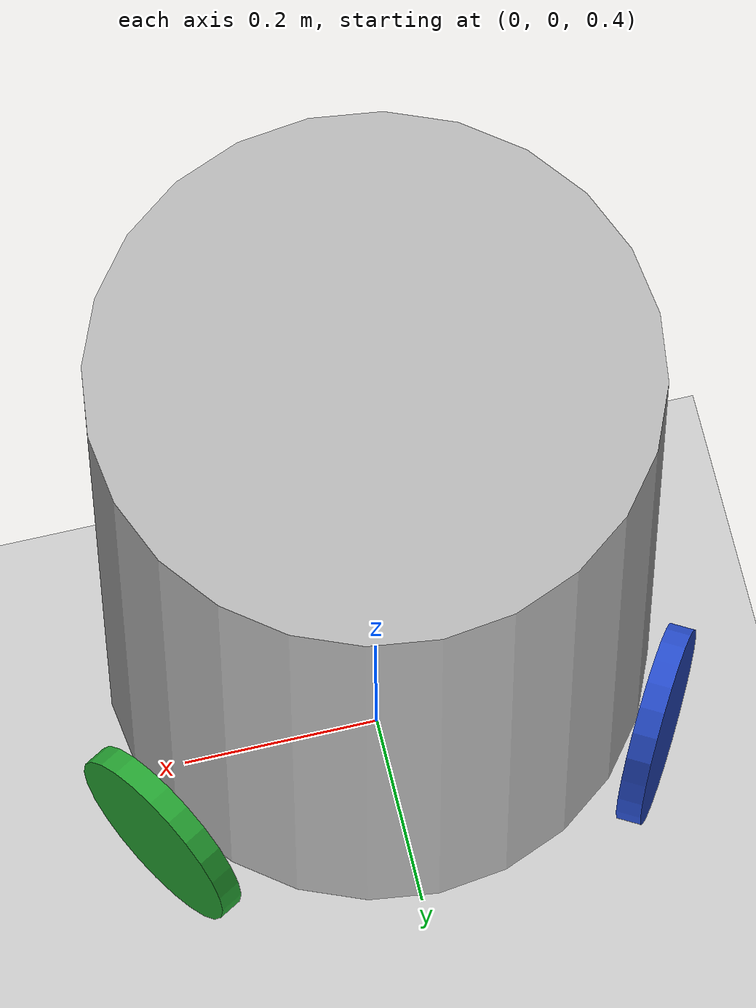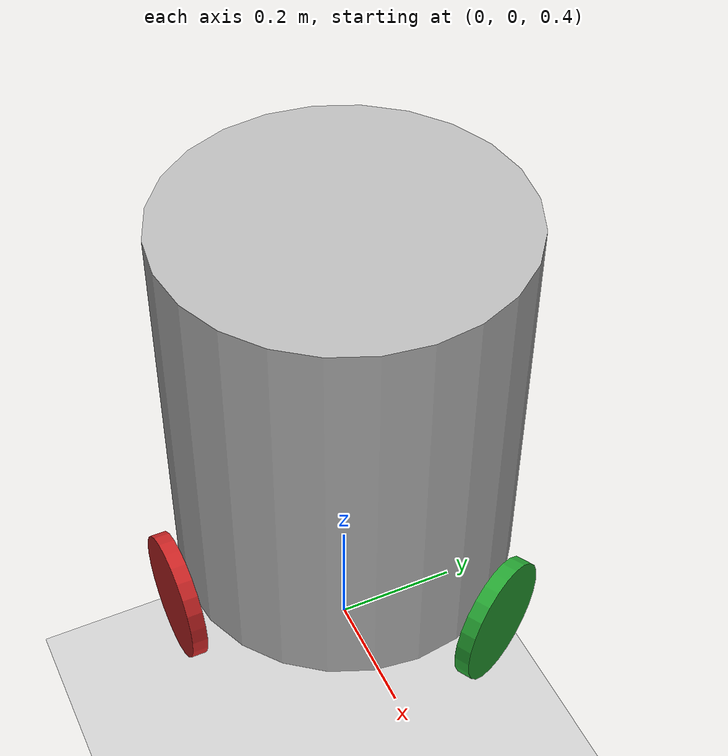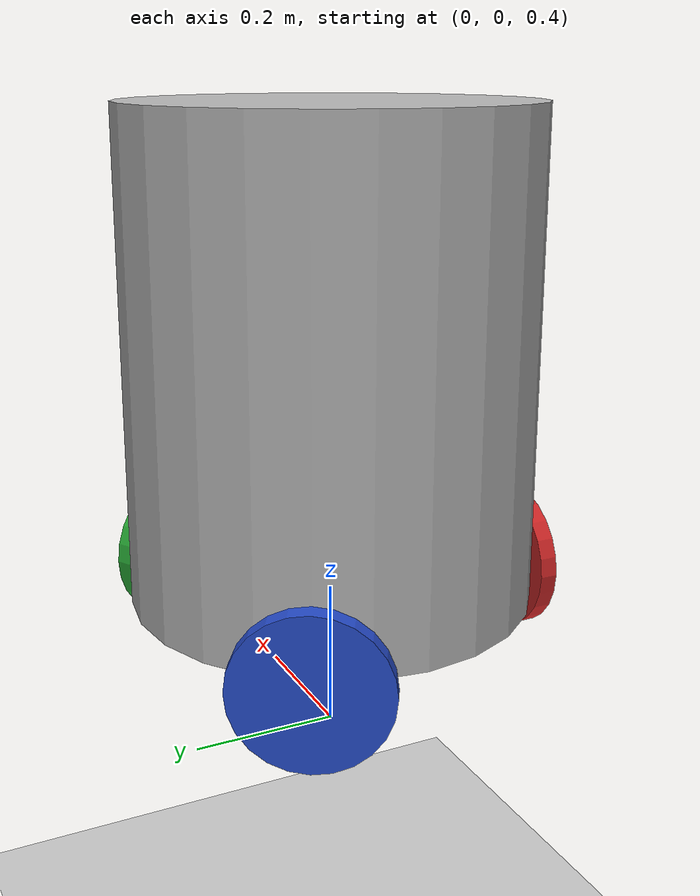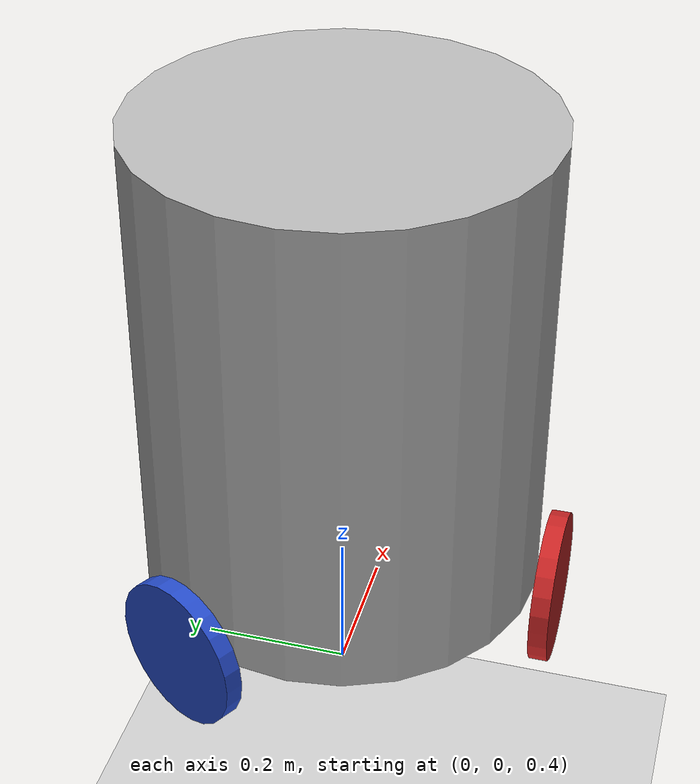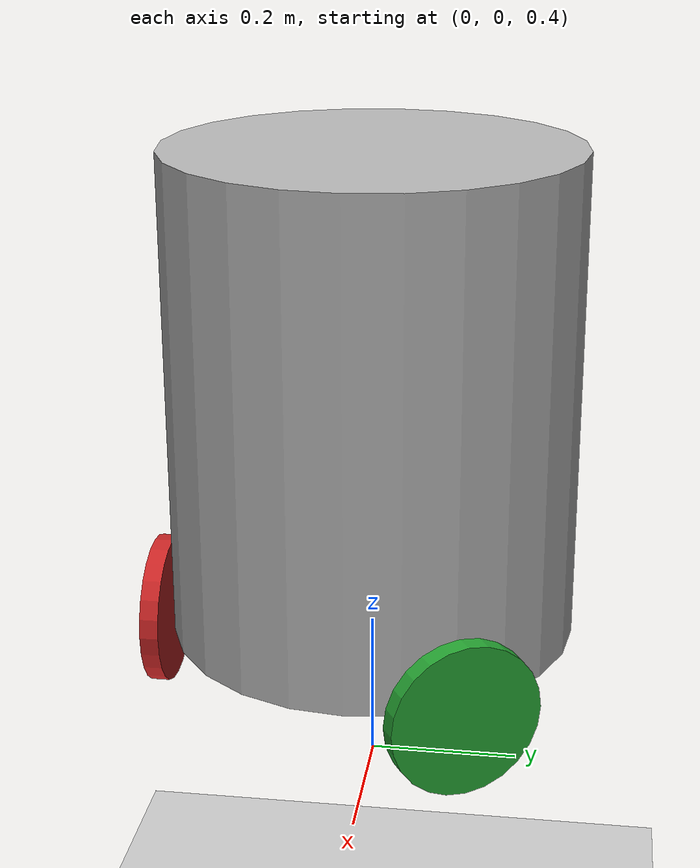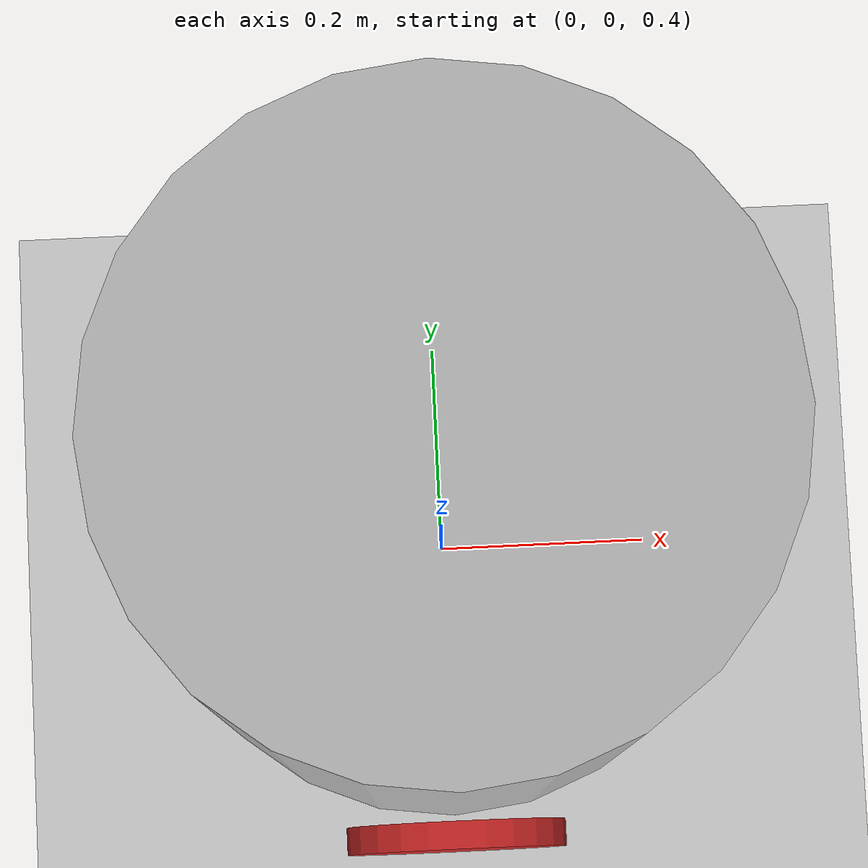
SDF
<?xml version="1.0" ?>
<sdf version="1.4">
  <world name="default">
    <physics type="ode">
      <gravity>0.000000 0.000000 -9.810000</gravity>
      <ode>
        <solver>
          <type>quick</type>
          <iters>250</iters>
          <precon_iters>0</precon_iters>
          <sor>1.400000</sor>
        </solver>
        <constraints>
          <cfm>0.000000</cfm>
          <erp>0.200000</erp>
          <contact_max_correcting_vel>0.000000</contact_max_correcting_vel>
          <contact_surface_layer>0.00000</contact_surface_layer>
        </constraints>
      </ode>
      <bullet>
        <solver>
          <type>sequential_impulse</type>
          <iters>250</iters>
          <sor>1.400000</sor>
        </solver>
        <constraints>
          <cfm>0.000000</cfm>
          <erp>0.200000</erp>
          <split_impulse>true</split_impulse>
          <split_impulse_penetration_threshold>-0.01</split_impulse_penetration_threshold>
          <contact_surface_layer>0.01000</contact_surface_layer>
        </constraints>
      </bullet>
      <simbody>
        <accuracy>0.001</accuracy>
        <max_transient_velocity>0.01</max_transient_velocity>
        <contact>
          <stiffness>1e8</stiffness>
          <dissipation>10</dissipation>
          <static_friction>0.15</static_friction>
          <dynamic_friction>0.1</dynamic_friction>
          <viscous_friction>0.0</viscous_friction>
        </contact>
      </simbody>
      <real_time_update_rate>0.000000</real_time_update_rate>
      <max_step_size>0.001000</max_step_size>
    </physics>

    <include>
      <uri>model://ground_plane</uri>
    </include>
    <include>
      <uri>model://sun</uri>
    </include>

    <model name='trikey'>
      <pose>0 0 0.5 0 -0 0</pose>
      <link name='trikey_base'>
        <pose>0 0 0 0 -0 0</pose>
        <inertial>
          <pose>-0.003048 0.00254 0.41415 0 -0 0</pose>
          <mass>32.7</mass>
          <inertia>
            <ixx>1.747</ixx>
            <ixy>0</ixy>
            <ixz>0</ixz>
            <iyy>1.747</iyy>
            <iyz>0</iyz>
            <izz>1.192</izz>
          </inertia>
        </inertial>
        <visual name='trikey_base_visual'>
          <pose>0 0 0.426 0 -0 0</pose>
          <geometry>
            <cylinder>
              <length>0.65</length>
              <radius>0.27</radius>
            </cylinder>
          </geometry>
        </visual>
        <collision name='trikey_base_collision'>
          <pose>0 0 0.426 0 -0 0</pose>
          <geometry>
            <cylinder>
              <length>0.65</length>
              <radius>0.27</radius>
            </cylinder>
          </geometry>
        </collision>
        <velocity_decay>
          <linear>0</linear>
          <angular>0</angular>
        </velocity_decay>
      </link>
      <joint name='world_to_base' type='revolute'>
        <child>trikey_base</child>
        <parent>world</parent>
        <axis>
          <limit>
            <lower>0</lower>
            <upper>0</upper>
          </limit>
          <dynamics>
            <damping>0</damping>
          </dynamics>
          <xyz>0 0 1</xyz>
        </axis>
      </joint>
      <link name='ow_transform_0_l'>
        <pose>0 -0.24 0.1 0 -0 0</pose>
        <inertial>
          <pose>0 0 0 0 0 0</pose>
          <mass>0.66725</mass>
          <inertia>
            <ixx>0.00160418</ixx>
            <ixy>-3.598e-06</ixy>
            <ixz>1.6199e-05</ixz>
            <iyy>0.00279814</iyy>
            <iyz>-4.1656e-05</iyz>
            <izz>0.00160339</izz>
          </inertia>
        </inertial>
        <collision name='ow_transform_0_l_collision_omni_wheel_0'>
          <pose>0 -0.05 2.44839e-13 1.5708 -0 0</pose>
          <geometry>
            <cylinder>
              <length>0.025</length>
              <radius>0.101</radius>
            </cylinder>
          </geometry>
          <surface>
            <contact>
              <ode/>
            </contact>
            <friction>
              <ode/>
            </friction>
          </surface>
        </collision>
        <visual name='ow_transform_0_l_visual_omni_wheel_0'>
          <pose>0 -0.05 2.44839e-13 1.5708 -0 0</pose>
          <geometry>
            <cylinder>
              <length>0.025</length>
              <radius>0.101</radius>
            </cylinder>
          </geometry>
          <material>
            <script>
              <name>Gazebo/Red</name>
              <uri>__default__</uri>
            </script>
          </material>
        </visual>
        <gravity>1</gravity>
        <velocity_decay>
          <linear>0</linear>
          <angular>0</angular>
        </velocity_decay>
        <self_collide>0</self_collide>
      </link>
      <joint name='wheel1_joint' type='revolute'>
        <child>ow_transform_0_l</child>
        <parent>trikey_base</parent>
        <axis>
          <xyz>0 -1 0</xyz>
          <limit>
            <lower>-1e+16</lower>
            <upper>1e+16</upper>
          </limit>
          <dynamics/>
        </axis>
      </joint>
      <link name='ow_transform_1_l'>
        <pose>0.207846 0.12 0.1 0 -0 2.09439510239</pose>
        <inertial>
          <pose>0 0 0 0 0 0</pose>
          <mass>0.66725</mass>
          <inertia>
            <ixx>0.00160418</ixx>
            <ixy>-3.598e-06</ixy>
            <ixz>1.6199e-05</ixz>
            <iyy>0.00279814</iyy>
            <iyz>-4.1656e-05</iyz>
            <izz>0.00160339</izz>
          </inertia>
        </inertial>
        <collision name='ow_transform_1_l_collision_omni_wheel_1'>
          <pose>0 -0.05 2.44839e-13 1.5708 -0 0</pose>
          <geometry>
            <cylinder>
              <length>0.025</length>
              <radius>0.101</radius>
            </cylinder>
          </geometry>
          <surface>
            <contact>
              <ode/>
            </contact>
            <friction>
              <ode/>
            </friction>
          </surface>
        </collision>
        <visual name='ow_transform_1_l_visual_omni_wheel_1'>
          <pose>0 -0.05 2.44839e-13 1.5708 -0 0</pose>
          <geometry>
            <cylinder>
              <length>0.025</length>
              <radius>0.101</radius>
            </cylinder>
          </geometry>
          <material>
            <script>
              <name>Gazebo/Green</name>
              <uri>__default__</uri>
            </script>
          </material>
        </visual>
        <gravity>1</gravity>
        <velocity_decay>
          <linear>0</linear>
          <angular>0</angular>
        </velocity_decay>
        <self_collide>0</self_collide>
      </link>
      <joint name='wheel2_joint' type='revolute'>
        <child>ow_transform_1_l</child>
        <parent>trikey_base</parent>
        <axis>
          <xyz>0.86602540378 0.5 0</xyz>
          <limit>
            <lower>-1e+16</lower>
            <upper>1e+16</upper>
          </limit>
          <dynamics/>
        </axis>
      </joint>
      <link name='ow_transform_2_l'>
        <pose>-0.207846 0.12 0.1 0 0 -2.09439510239</pose>
        <inertial>
          <pose>0 0 0 0 0 0</pose>
          <mass>0.66722.44839e-135</mass>
          <inertia>
            <ixx>0.00160418</ixx>
            <ixy>-3.598e-06</ixy>
            <ixz>1.6199e-05</ixz>
            <iyy>0.00279814</iyy>
            <iyz>-4.1656e-05</iyz>
            <izz>0.00160339</izz>
          </inertia>
        </inertial>
        <collision name='ow_transform_2_l_collision_omni_wheel_2'>
          <pose>0 -0.05 2.44839e-13 1.5708 -0 0</pose>
          <geometry>
            <cylinder>
              <length>0.025</length>
              <radius>0.101</radius>
            </cylinder>
          </geometry>
          <surface>
            <contact>
              <ode/>
            </contact>
            <friction>
              <ode/>
            </friction>
          </surface>
        </collision>
        <visual name='ow_transform_2_l_visual_omni_wheel_2'>
          <pose>0 -0.05 2.44839e-13 1.5708 -0 0</pose>
          <geometry>
            <cylinder>
              <length>0.025</length>
              <radius>0.101</radius>
            </cylinder>
          </geometry>
          <material>
            <script>
              <name>Gazebo/Blue</name>
              <uri>__default__</uri>
            </script>
          </material>
        </visual>
        <gravity>1</gravity>
        <velocity_decay>
          <linear>0</linear>
          <angular>0</angular>
        </velocity_decay>
        <self_collide>0</self_collide>
      </link>
      <joint name='wheel3_joint' type='revolute'>
        <child>ow_transform_2_l</child>
        <parent>trikey_base</parent>
        <axis>
          <xyz>-0.86602540378 0.5 0</xyz>
          <limit>
            <lower>-1e+16</lower>
            <upper>1e+16</upper>
          </limit>
          <dynamics/>
        </axis>
      </joint>
      <static>0</static>
    </model>
  </world>
</sdf>
